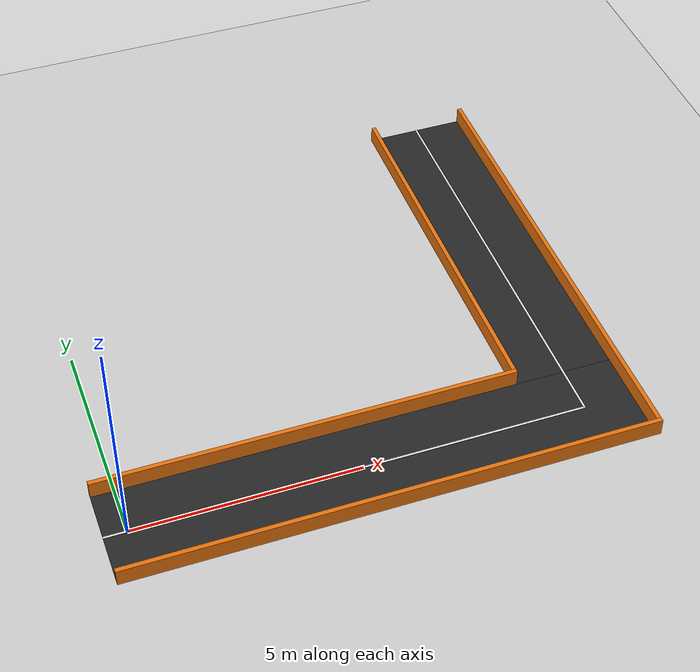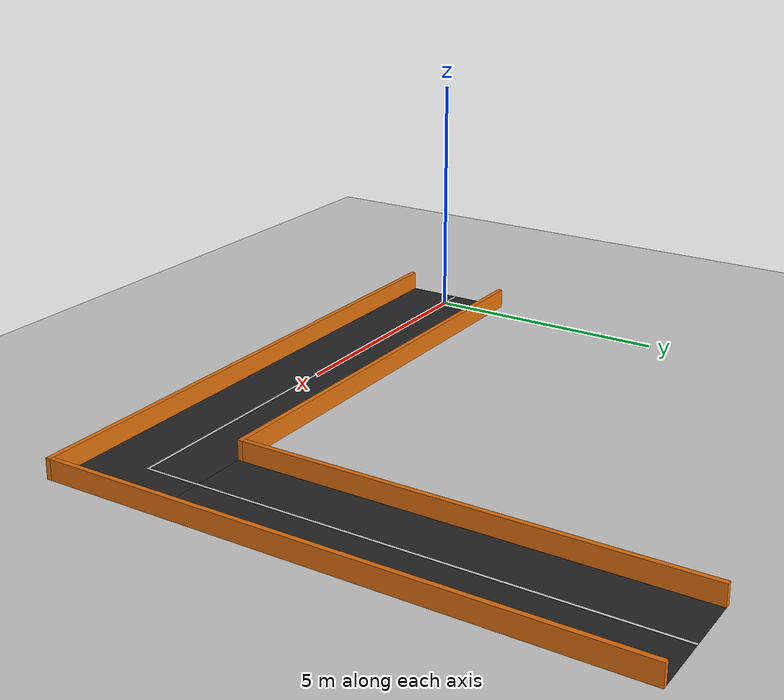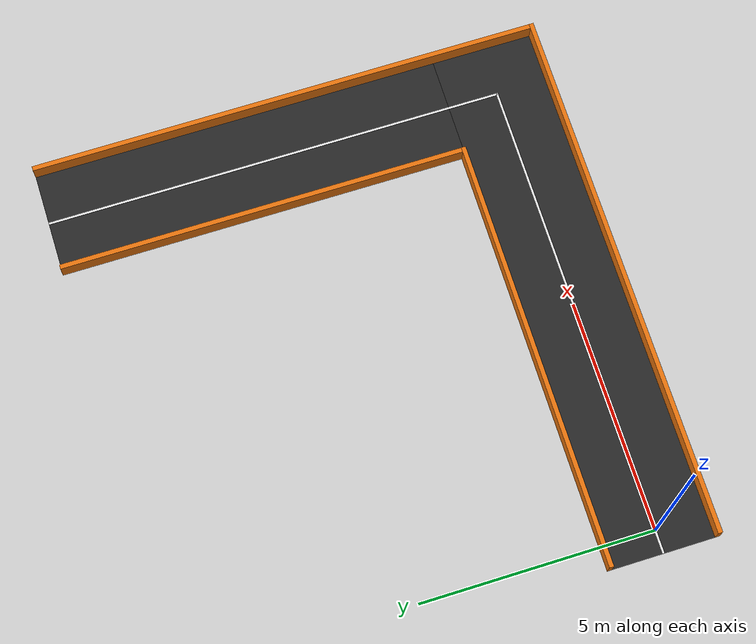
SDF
<?xml version="1.0"?>
<sdf version="1.6">
  <world name="road_world">

    <gui fullscreen="0">
      <camera name="user_camera">
        <pose>6.724971 4.231524 20.176666 0.0 1.569796 1.567110</pose>
        <view_controller>orbit</view_controller>
      </camera>
    </gui>

    <include>
      <uri>model://sun</uri>
    </include>

    <include>
      <uri>model://ground_plane</uri>
    </include>

    <!-- ================= Asphalt ================= -->
    <model name="road_asphalt_a">
      <static>true</static>
      <pose>5.3 0 0.005 0 0 0</pose>
      <link name="link">
        <visual name="visual">
          <geometry>
            <box><size>11.6 2.2 0.01</size></box>
          </geometry>
          <material>
            <ambient>0.15 0.15 0.15 1</ambient>
            <diffuse>0.15 0.15 0.15 1</diffuse>
          </material>
        </visual>
      </link>
    </model>

    <model name="road_asphalt_b">
      <static>true</static>
      <pose>10 5.55 0.005 0 0 0</pose>
      <link name="link">
        <visual name="visual">
          <geometry>
            <box><size>2.2 8.9 0.01</size></box>
          </geometry>
          <material>
            <ambient>0.15 0.15 0.15 1</ambient>
            <diffuse>0.15 0.15 0.15 1</diffuse>
          </material>
        </visual>
      </link>
    </model>

    <!-- ================= Center line ================= -->
    <model name="road_centerline_a">
      <static>true</static>
      <pose>4.7625 0 0.01 0 0 0</pose>
      <link name="link">
        <visual name="visual">
          <geometry>
            <box><size>10.525 0.05 0.01</size></box>
          </geometry>
          <material>
            <ambient>0.9 0.9 0.9 1</ambient>
            <diffuse>0.9 0.9 0.9 1</diffuse>
          </material>
        </visual>
      </link>
    </model>

    <model name="road_centerline_b">
      <static>true</static>
      <pose>10 5 0.01 0 0 0</pose>
      <link name="link">
        <visual name="visual">
          <geometry>
            <box><size>0.05 10 0.01</size></box>
          </geometry>
          <material>
            <ambient>0.9 0.9 0.9 1</ambient>
            <diffuse>0.9 0.9 0.9 1</diffuse>
          </material>
        </visual>
      </link>
    </model>

    <!-- ================= Barriers ================= -->
    <model name="barrier_outer_a">
      <static>true</static>
      <pose>5.35 -1.15 0.2 0 0 0</pose>
      <link name="link">
        <collision name="collision">
          <geometry>
            <box><size>11.7 0.1 0.4</size></box>
          </geometry>
        </collision>
        <visual name="visual">
          <geometry>
            <box><size>11.7 0.1 0.4</size></box>
          </geometry>
          <material>
            <ambient>0.9 0.45 0.05 1</ambient>
            <diffuse>0.9 0.45 0.05 1</diffuse>
          </material>
        </visual>
      </link>
    </model>

    <model name="barrier_outer_b">
      <static>true</static>
      <pose>11.15 4.45 0.2 0 0 0</pose>
      <link name="link">
        <collision name="collision">
          <geometry>
            <box><size>0.1 11.1 0.4</size></box>
          </geometry>
        </collision>
        <visual name="visual">
          <geometry>
            <box><size>0.1 11.1 0.4</size></box>
          </geometry>
          <material>
            <ambient>0.9 0.45 0.05 1</ambient>
            <diffuse>0.9 0.45 0.05 1</diffuse>
          </material>
        </visual>
      </link>
    </model>

    <model name="barrier_inner_a">
      <static>true</static>
      <pose>4.2 1.15 0.2 0 0 0</pose>
      <link name="link">
        <collision name="collision">
          <geometry>
            <box><size>9.4 0.1 0.4</size></box>
          </geometry>
        </collision>
        <visual name="visual">
          <geometry>
            <box><size>9.4 0.1 0.4</size></box>
          </geometry>
          <material>
            <ambient>0.9 0.45 0.05 1</ambient>
            <diffuse>0.9 0.45 0.05 1</diffuse>
          </material>
        </visual>
      </link>
    </model>

    <model name="barrier_inner_b">
      <static>true</static>
      <pose>8.85 5.6 0.2 0 0 0</pose>
      <link name="link">
        <collision name="collision">
          <geometry>
            <box><size>0.1 8.8 0.4</size></box>
          </geometry>
        </collision>
        <visual name="visual">
          <geometry>
            <box><size>0.1 8.8 0.4</size></box>
          </geometry>
          <material>
            <ambient>0.9 0.45 0.05 1</ambient>
            <diffuse>0.9 0.45 0.05 1</diffuse>
          </material>
        </visual>
      </link>
    </model>

  </world>
</sdf>
